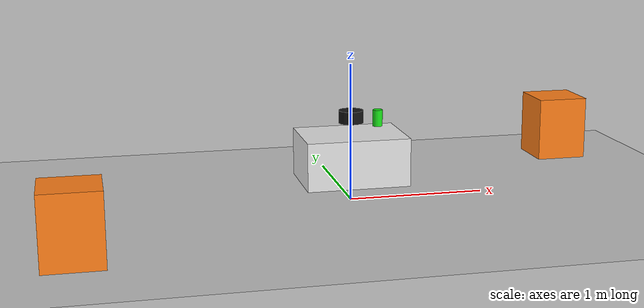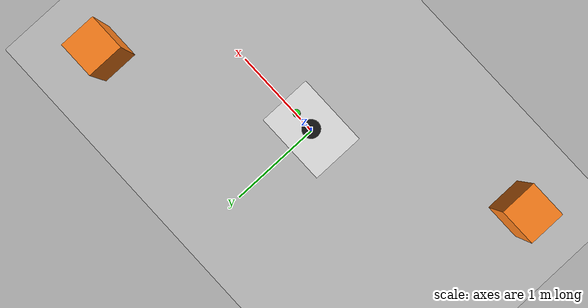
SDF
<?xml version="1.0" ?>
<sdf version="1.8">
  <world name="lab08_training_world">
    <physics name="1ms" type="ignored">
      <max_step_size>0.001</max_step_size>
      <real_time_factor>1.0</real_time_factor>
    </physics>
    <plugin filename="ignition-gazebo-physics-system" name="ignition::gazebo::systems::Physics"/>
    <plugin filename="ignition-gazebo-user-commands-system" name="ignition::gazebo::systems::UserCommands"/>
    <plugin filename="ignition-gazebo-scene-broadcaster-system" name="ignition::gazebo::systems::SceneBroadcaster"/>
    <light type="directional" name="sun">
      <cast_shadows>true</cast_shadows><pose>0 0 10 0 0 0</pose>
      <diffuse>0.8 0.8 0.8 1</diffuse><specular>0.2 0.2 0.2 1</specular>
      <attenuation><range>1000</range><constant>0.9</constant><linear>0.01</linear><quadratic>0.001</quadratic></attenuation>
      <direction>-0.5 0.1 -0.9</direction>
    </light>
    <model name="ground_plane"><static>true</static><link name="link"><collision name="collision"><geometry><plane><normal>0 0 1</normal><size>20 20</size></plane></geometry></collision><visual name="visual"><geometry><plane><normal>0 0 1</normal><size>20 20</size></plane></geometry><material><ambient>0.75 0.75 0.75 1</ambient><diffuse>0.75 0.75 0.75 1</diffuse></material></visual></link></model>
    <model name="myagv_training_model">
      <static>true</static><pose>0 0 0.32 0 0 0</pose>
      <link name="base">
        <visual name="body"><geometry><box><size>0.75 0.55 0.35</size></box></geometry><material><ambient>0.9 0.9 0.9 1</ambient><diffuse>0.9 0.9 0.9 1</diffuse></material></visual>
        <collision name="body_collision"><geometry><box><size>0.75 0.55 0.35</size></box></geometry></collision>
        <visual name="lidar"><pose>0 0 0.30 0 0 0</pose><geometry><cylinder><radius>0.09</radius><length>0.09</length></cylinder></geometry><material><ambient>0.08 0.08 0.08 1</ambient><diffuse>0.08 0.08 0.08 1</diffuse></material></visual>
        <visual name="status_light"><pose>0.20 0 0.28 0 0 0</pose><geometry><cylinder><radius>0.035</radius><length>0.12</length></cylinder></geometry><material><ambient>0.1 0.9 0.1 1</ambient><diffuse>0.1 0.9 0.1 1</diffuse></material></visual>
      </link>
    </model>
    <model name="safety_marker_a"><static>true</static><pose>2 1 0.25 0 0 0</pose><link name="link"><visual name="v"><geometry><box><size>0.4 0.4 0.5</size></box></geometry><material><ambient>1 0.5 0.1 1</ambient><diffuse>1 0.5 0.1 1</diffuse></material></visual></link></model>
    <model name="safety_marker_b"><static>true</static><pose>-2 -1 0.25 0 0 0</pose><link name="link"><visual name="v"><geometry><box><size>0.4 0.4 0.5</size></box></geometry><material><ambient>1 0.5 0.1 1</ambient><diffuse>1 0.5 0.1 1</diffuse></material></visual></link></model>
  </world>
</sdf>
